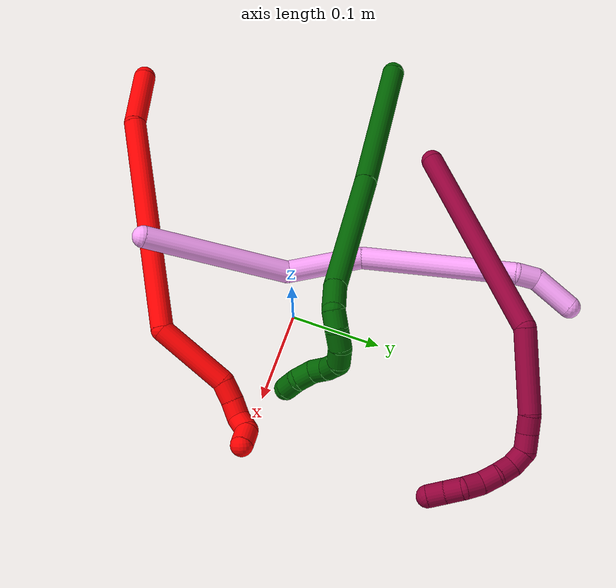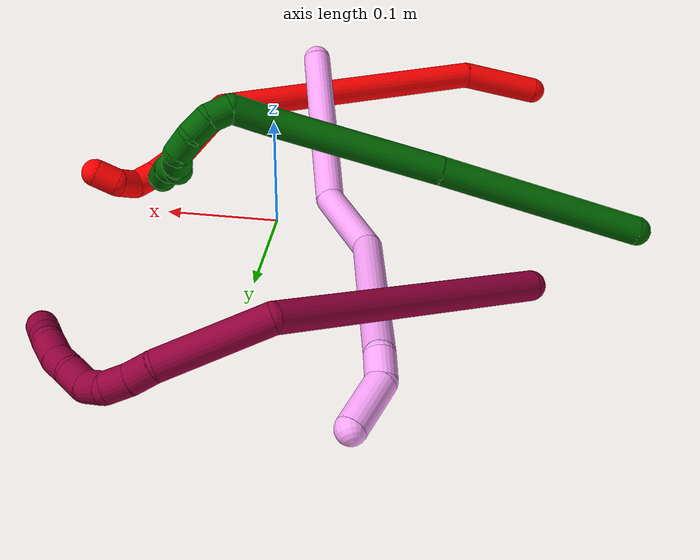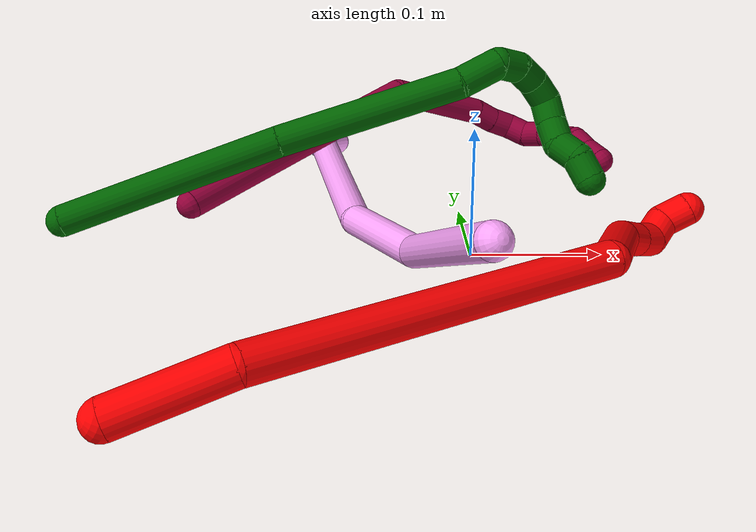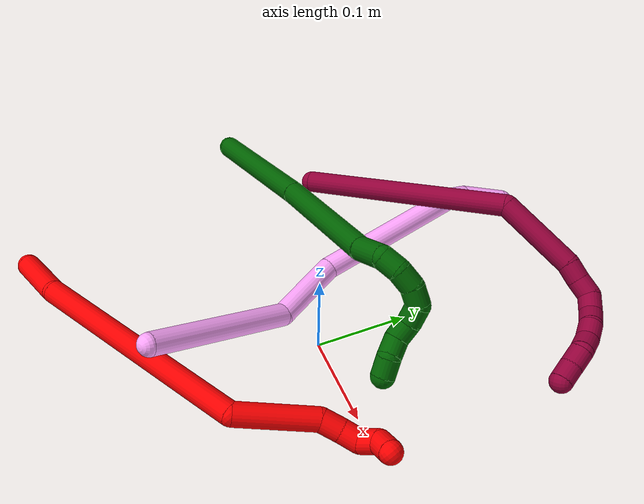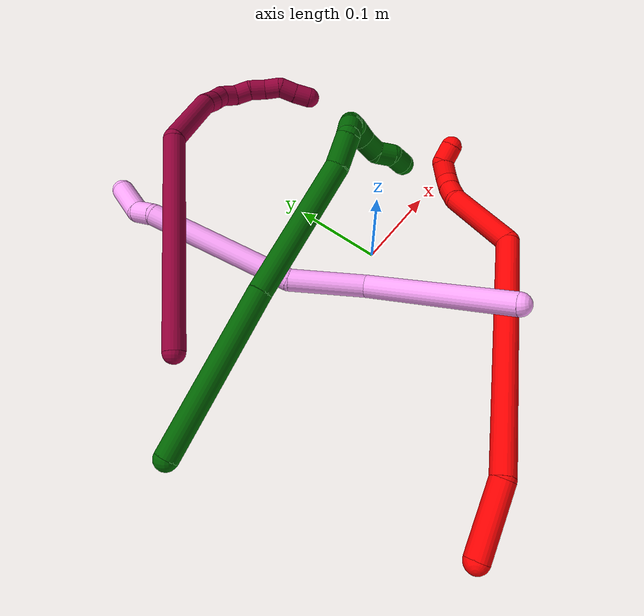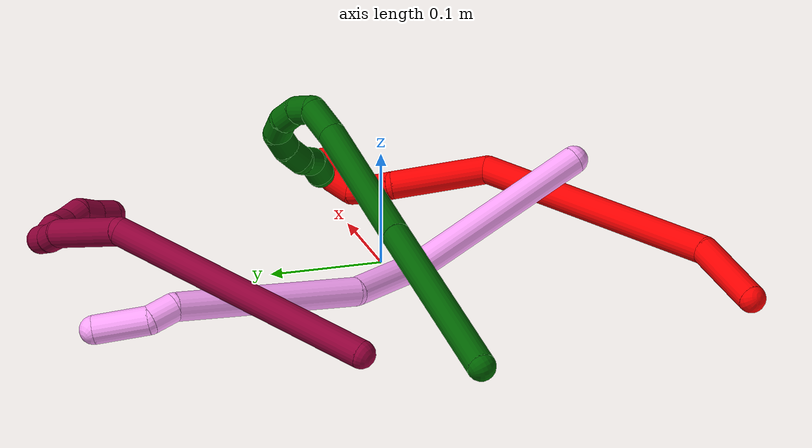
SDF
<sdf version="1.7">
 <world name="default">
  <model name="photoneo_s_sensor">
   <static>1</static>
   <pose>0 0 2 1.57079 1.57079 3.14159</pose>
   <link name="link">
    <inertial><mass>0.1</mass></inertial>
    <sensor name="sensor" type="depth">
     <update_rate>30</update_rate>
     <camera>
      <horizontal_fov>1.22</horizontal_fov>
      <image><width>1920</width><height>1200</height><format>B8G8R8</format></image>
      <clip><near>0.1</near><far>4</far></clip>
      <depth_camera><output>points</output></depth_camera>
     </camera>
     <plugin name="camera_plugin" filename="libgazebo_ros_depth_camera.so">
      <baseline>0.2</baseline>
      <alwaysOn>1</alwaysOn>
      <updateRate>0.0</updateRate>
      <cameraName>camera_ir</cameraName>
      <imageTopicName>/camera/color/image_raw</imageTopicName>
      <cameraInfoTopicName>/camera/color/camera_info</cameraInfoTopicName>
      <depthImageTopicName>/camera/depth/image_raw</depthImageTopicName>
      <depthImageCameraInfoTopicName>/camera/depth/camera_info</depthImageCameraInfoTopicName>
      <pointCloudTopicName>/camera/depth/points</pointCloudTopicName>
      <frameName>fr_optical</frameName>
      <pointCloudCutoff>0.1</pointCloudCutoff>
      <pointCloudCutoffMax>2.0</pointCloudCutoffMax>
      <distortionK1>0</distortionK1>
      <distortionK2>0</distortionK2>
      <distortionK3>0</distortionK3>
      <distortionT1>0</distortionT1>
      <distortionT2>0</distortionT2>
      <CxPrime>0</CxPrime>
      <Cx>0</Cx>
      <Cy>0</Cy>
      <focalLength>0</focalLength>
      <hackBaseline>0</hackBaseline>
     </plugin>
    </sensor>
   </link>
  </model>
  <model name="2">
   <static>0</static>
   <link name="2">
    <collision name="collision-cylinder-e_1_1_4">
     <pose>0.024475 0.000554 -0.027061 -3.12114 0.735164 -3.08849</pose>
     <geometry><cylinder><radius>0.0125</radius><length>0.072983</length></cylinder></geometry>
     <surface>
      <friction><ode><mu>1.16</mu><mu2>1.16</mu2><slip1>0</slip1><slip2>0</slip2></ode></friction>
      <contact><ode><kp>1e+06</kp><kd>1</kd><max_vel>0</max_vel><min_depth>0.001</min_depth></ode></contact>
     </surface>
    </collision>
    <visual name="visual-cylinder-e_1_1_4">
     <pose>0.024475 0.000554 -0.027061 -3.12114 0.735164 -3.08849</pose>
     <geometry><cylinder><radius>0.0125</radius><length>0.072983</length></cylinder></geometry>
     <material><ambient>1 0 0 1</ambient></material>
    </visual>
    <collision name="collision-cylinder-e_2_4_5">
     <pose>0.102149 0.028299 -0.166988 -2.90518 0.429673 -2.14474</pose>
     <geometry><cylinder><radius>0.0125</radius><length>0.255407</length></cylinder></geometry>
     <surface>
      <friction><ode><mu>1.16</mu><mu2>1.16</mu2><slip1>0</slip1><slip2>0</slip2></ode></friction>
      <contact><ode><kp>1e+06</kp><kd>1</kd><max_vel>0</max_vel><min_depth>0.001</min_depth></ode></contact>
     </surface>
    </collision>
    <visual name="visual-cylinder-e_2_4_5">
     <pose>0.102149 0.028299 -0.166988 -2.90518 0.429673 -2.14474</pose>
     <geometry><cylinder><radius>0.0125</radius><length>0.255407</length></cylinder></geometry>
     <material><ambient>1 0 0 1</ambient></material>
    </visual>
    <collision name="collision-cylinder-e_3_5_6">
     <pose>0.153456 0.08789 -0.308211 -2.28974 -0.043876 0.096646</pose>
     <geometry><cylinder><radius>0.0125</radius><length>0.086197</length></cylinder></geometry>
     <surface>
      <friction><ode><mu>1.16</mu><mu2>1.16</mu2><slip1>0</slip1><slip2>0</slip2></ode></friction>
      <contact><ode><kp>1e+06</kp><kd>1</kd><max_vel>0</max_vel><min_depth>0.001</min_depth></ode></contact>
     </surface>
    </collision>
    <visual name="visual-cylinder-e_3_5_6">
     <pose>0.153456 0.08789 -0.308211 -2.28974 -0.043876 0.096646</pose>
     <geometry><cylinder><radius>0.0125</radius><length>0.086197</length></cylinder></geometry>
     <material><ambient>1 0 0 1</ambient></material>
    </visual>
    <collision name="collision-cylinder-e_4_6_7">
     <pose>0.151392 0.12496 -0.346953 -2.71909 -0.015285 0.071247</pose>
     <geometry><cylinder><radius>0.0125</radius><length>0.022776</length></cylinder></geometry>
     <surface>
      <friction><ode><mu>1.16</mu><mu2>1.16</mu2><slip1>0</slip1><slip2>0</slip2></ode></friction>
      <contact><ode><kp>1e+06</kp><kd>1</kd><max_vel>0</max_vel><min_depth>0.001</min_depth></ode></contact>
     </surface>
    </collision>
    <visual name="visual-cylinder-e_4_6_7">
     <pose>0.151392 0.12496 -0.346953 -2.71909 -0.015285 0.071247</pose>
     <geometry><cylinder><radius>0.0125</radius><length>0.022776</length></cylinder></geometry>
     <material><ambient>1 0 0 1</ambient></material>
    </visual>
    <collision name="collision-cylinder-e_5_7_8">
     <pose>0.152266 0.133184 -0.366845 -2.78374 0.102985 -0.555204</pose>
     <geometry><cylinder><radius>0.0125</radius><length>0.020405</length></cylinder></geometry>
     <surface>
      <friction><ode><mu>1.16</mu><mu2>1.16</mu2><slip1>0</slip1><slip2>0</slip2></ode></friction>
      <contact><ode><kp>1e+06</kp><kd>1</kd><max_vel>0</max_vel><min_depth>0.001</min_depth></ode></contact>
     </surface>
    </collision>
    <visual name="visual-cylinder-e_5_7_8">
     <pose>0.152266 0.133184 -0.366845 -2.78374 0.102985 -0.555204</pose>
     <geometry><cylinder><radius>0.0125</radius><length>0.020405</length></cylinder></geometry>
     <material><ambient>1 0 0 1</ambient></material>
    </visual>
    <collision name="collision-cylinder-e_6_8_9">
     <pose>0.159946 0.142618 -0.381861 -2.32383 0.688511 -1.38251</pose>
     <geometry><cylinder><radius>0.0125</radius><length>0.020871</length></cylinder></geometry>
     <surface>
      <friction><ode><mu>1.16</mu><mu2>1.16</mu2><slip1>0</slip1><slip2>0</slip2></ode></friction>
      <contact><ode><kp>1e+06</kp><kd>1</kd><max_vel>0</max_vel><min_depth>0.001</min_depth></ode></contact>
     </surface>
    </collision>
    <visual name="visual-cylinder-e_6_8_9">
     <pose>0.159946 0.142618 -0.381861 -2.32383 0.688511 -1.38251</pose>
     <geometry><cylinder><radius>0.0125</radius><length>0.020871</length></cylinder></geometry>
     <material><ambient>1 0 0 1</ambient></material>
    </visual>
    <collision name="collision-cylinder-e_7_9_2">
     <pose>0.175145 0.147453 -0.39366 2.97709 0.931194 2.81634</pose>
     <geometry><cylinder><radius>0.0125</radius><length>0.021361</length></cylinder></geometry>
     <surface>
      <friction><ode><mu>1.16</mu><mu2>1.16</mu2><slip1>0</slip1><slip2>0</slip2></ode></friction>
      <contact><ode><kp>1e+06</kp><kd>1</kd><max_vel>0</max_vel><min_depth>0.001</min_depth></ode></contact>
     </surface>
    </collision>
    <visual name="visual-cylinder-e_7_9_2">
     <pose>0.175145 0.147453 -0.39366 2.97709 0.931194 2.81634</pose>
     <geometry><cylinder><radius>0.0125</radius><length>0.021361</length></cylinder></geometry>
     <material><ambient>1 0 0 1</ambient></material>
    </visual>
    <collision name="collision-sphere-2">
     <pose>0.183715 0.146409 -0.399949 0 -0 0</pose>
     <geometry><sphere><radius>0.0125</radius></sphere></geometry>
     <surface>
      <friction><ode><mu>1.16</mu><mu2>1.16</mu2><slip1>0</slip1><slip2>0</slip2></ode></friction>
      <contact><ode><kp>1e+06</kp><kd>1</kd><max_vel>0</max_vel><min_depth>0.001</min_depth></ode></contact>
     </surface>
    </collision>
    <visual name="visual-sphere-2">
     <pose>0.183715 0.146409 -0.399949 0 -0 0</pose>
     <geometry><sphere><radius>0.0125</radius></sphere></geometry>
     <material><ambient>1 0 0 1</ambient></material>
    </visual>
    <collision name="collision-sphere-9">
     <pose>0.166576 0.148497 -0.387371 0 -0 0</pose>
     <geometry><sphere><radius>0.0125</radius></sphere></geometry>
     <surface>
      <friction><ode><mu>1.16</mu><mu2>1.16</mu2><slip1>0</slip1><slip2>0</slip2></ode></friction>
      <contact><ode><kp>1e+06</kp><kd>1</kd><max_vel>0</max_vel><min_depth>0.001</min_depth></ode></contact>
     </surface>
    </collision>
    <visual name="visual-sphere-9">
     <pose>0.166576 0.148497 -0.387371 0 -0 0</pose>
     <geometry><sphere><radius>0.0125</radius></sphere></geometry>
     <material><ambient>1 0 0 1</ambient></material>
    </visual>
    <collision name="collision-sphere-4">
     <pose>0.048951 0.001107 -0.054122 0 -0 0</pose>
     <geometry><sphere><radius>0.0125</radius></sphere></geometry>
     <surface>
      <friction><ode><mu>1.16</mu><mu2>1.16</mu2><slip1>0</slip1><slip2>0</slip2></ode></friction>
      <contact><ode><kp>1e+06</kp><kd>1</kd><max_vel>0</max_vel><min_depth>0.001</min_depth></ode></contact>
     </surface>
    </collision>
    <visual name="visual-sphere-4">
     <pose>0.048951 0.001107 -0.054122 0 -0 0</pose>
     <geometry><sphere><radius>0.0125</radius></sphere></geometry>
     <material><ambient>1 0 0 1</ambient></material>
    </visual>
    <collision name="collision-sphere-1">
     <geometry><sphere><radius>0.0125</radius></sphere></geometry>
     <surface>
      <friction><ode><mu>1.16</mu><mu2>1.16</mu2><slip1>0</slip1><slip2>0</slip2></ode></friction>
      <contact><ode><kp>1e+06</kp><kd>1</kd><max_vel>0</max_vel><min_depth>0.001</min_depth></ode></contact>
     </surface>
    </collision>
    <visual name="visual-sphere-1">
     <geometry><sphere><radius>0.0125</radius></sphere></geometry>
     <material><ambient>1 0 0 1</ambient></material>
    </visual>
    <collision name="collision-sphere-8">
     <pose>0.153315 0.136738 -0.37635 0 -0 0</pose>
     <geometry><sphere><radius>0.0125</radius></sphere></geometry>
     <surface>
      <friction><ode><mu>1.16</mu><mu2>1.16</mu2><slip1>0</slip1><slip2>0</slip2></ode></friction>
      <contact><ode><kp>1e+06</kp><kd>1</kd><max_vel>0</max_vel><min_depth>0.001</min_depth></ode></contact>
     </surface>
    </collision>
    <visual name="visual-sphere-8">
     <pose>0.153315 0.136738 -0.37635 0 -0 0</pose>
     <geometry><sphere><radius>0.0125</radius></sphere></geometry>
     <material><ambient>1 0 0 1</ambient></material>
    </visual>
    <collision name="collision-sphere-5">
     <pose>0.155346 0.05549 -0.279854 0 -0 0</pose>
     <geometry><sphere><radius>0.0125</radius></sphere></geometry>
     <surface>
      <friction><ode><mu>1.16</mu><mu2>1.16</mu2><slip1>0</slip1><slip2>0</slip2></ode></friction>
      <contact><ode><kp>1e+06</kp><kd>1</kd><max_vel>0</max_vel><min_depth>0.001</min_depth></ode></contact>
     </surface>
    </collision>
    <visual name="visual-sphere-5">
     <pose>0.155346 0.05549 -0.279854 0 -0 0</pose>
     <geometry><sphere><radius>0.0125</radius></sphere></geometry>
     <material><ambient>1 0 0 1</ambient></material>
    </visual>
    <collision name="collision-sphere-6">
     <pose>0.151566 0.120291 -0.336568 0 -0 0</pose>
     <geometry><sphere><radius>0.0125</radius></sphere></geometry>
     <surface>
      <friction><ode><mu>1.16</mu><mu2>1.16</mu2><slip1>0</slip1><slip2>0</slip2></ode></friction>
      <contact><ode><kp>1e+06</kp><kd>1</kd><max_vel>0</max_vel><min_depth>0.001</min_depth></ode></contact>
     </surface>
    </collision>
    <visual name="visual-sphere-6">
     <pose>0.151566 0.120291 -0.336568 0 -0 0</pose>
     <geometry><sphere><radius>0.0125</radius></sphere></geometry>
     <material><ambient>1 0 0 1</ambient></material>
    </visual>
    <collision name="collision-sphere-7">
     <pose>0.151218 0.129629 -0.357339 0 -0 0</pose>
     <geometry><sphere><radius>0.0125</radius></sphere></geometry>
     <surface>
      <friction><ode><mu>1.16</mu><mu2>1.16</mu2><slip1>0</slip1><slip2>0</slip2></ode></friction>
      <contact><ode><kp>1e+06</kp><kd>1</kd><max_vel>0</max_vel><min_depth>0.001</min_depth></ode></contact>
     </surface>
    </collision>
    <visual name="visual-sphere-7">
     <pose>0.151218 0.129629 -0.357339 0 -0 0</pose>
     <geometry><sphere><radius>0.0125</radius></sphere></geometry>
     <material><ambient>1 0 0 1</ambient></material>
    </visual>
    <inertial>
     <pose>0.109475 0.053068 -0.205916 0 -0 0</pose>
     <mass>0.5</mass>
     <inertia>
      <ixx>-0.001708</ixx>
      <ixy>0</ixy>
      <ixz>0</ixz>
      <iyy>-0.000203</iyy>
      <iyz>0</iyz>
      <izz>-0.00098</izz>
     </inertia>
    </inertial>
   </link>
   <pose>-0.216011 -0.262583 0.016542 0.390888 -1.09659 -0.062134</pose>
  </model>
  <model name="4">
   <static>0</static>
   <link name="4">
    <collision name="collision-cylinder-e_1_1_4">
     <pose>-0.012169 -0.003093 0.083618 0.036973 -0.144413 -0.002675</pose>
     <geometry><cylinder><radius>0.0125</radius><length>0.169111</length></cylinder></geometry>
     <surface>
      <friction><ode><mu>1.16</mu><mu2>1.16</mu2><slip1>0</slip1><slip2>0</slip2></ode></friction>
      <contact><ode><kp>1e+06</kp><kd>1</kd><max_vel>0</max_vel><min_depth>0.001</min_depth></ode></contact>
     </surface>
    </collision>
    <visual name="visual-cylinder-e_1_1_4">
     <pose>-0.012169 -0.003093 0.083618 0.036973 -0.144413 -0.002675</pose>
     <geometry><cylinder><radius>0.0125</radius><length>0.169111</length></cylinder></geometry>
     <material><ambient>1 0.65098 0.996078 1</ambient></material>
    </visual>
    <collision name="collision-cylinder-e_2_4_5">
     <pose>-0.0265 0.012284 0.205393 -0.450808 -0.050969 0.01169</pose>
     <geometry><cylinder><radius>0.0125</radius><length>0.084893</length></cylinder></geometry>
     <surface>
      <friction><ode><mu>1.16</mu><mu2>1.16</mu2><slip1>0</slip1><slip2>0</slip2></ode></friction>
      <contact><ode><kp>1e+06</kp><kd>1</kd><max_vel>0</max_vel><min_depth>0.001</min_depth></ode></contact>
     </surface>
    </collision>
    <visual name="visual-cylinder-e_2_4_5">
     <pose>-0.0265 0.012284 0.205393 -0.450808 -0.050969 0.01169</pose>
     <geometry><cylinder><radius>0.0125</radius><length>0.084893</length></cylinder></geometry>
     <material><ambient>1 0.65098 0.996078 1</ambient></material>
    </visual>
    <collision name="collision-cylinder-e_3_5_6">
     <pose>-0.064228 0.062378 0.316178 -0.410676 -0.422006 0.089162</pose>
     <geometry><cylinder><radius>0.0125</radius><length>0.173666</length></cylinder></geometry>
     <surface>
      <friction><ode><mu>1.16</mu><mu2>1.16</mu2><slip1>0</slip1><slip2>0</slip2></ode></friction>
      <contact><ode><kp>1e+06</kp><kd>1</kd><max_vel>0</max_vel><min_depth>0.001</min_depth></ode></contact>
     </surface>
    </collision>
    <visual name="visual-cylinder-e_3_5_6">
     <pose>-0.064228 0.062378 0.316178 -0.410676 -0.422006 0.089162</pose>
     <geometry><cylinder><radius>0.0125</radius><length>0.173666</length></cylinder></geometry>
     <material><ambient>1 0.65098 0.996078 1</ambient></material>
    </visual>
    <collision name="collision-cylinder-e_4_6_7">
     <pose>-0.102515 0.094189 0.400639 -0.015688 -0.225994 0.00178</pose>
     <geometry><cylinder><radius>0.0125</radius><length>0.024286</length></cylinder></geometry>
     <surface>
      <friction><ode><mu>1.16</mu><mu2>1.16</mu2><slip1>0</slip1><slip2>0</slip2></ode></friction>
      <contact><ode><kp>1e+06</kp><kd>1</kd><max_vel>0</max_vel><min_depth>0.001</min_depth></ode></contact>
     </surface>
    </collision>
    <visual name="visual-cylinder-e_4_6_7">
     <pose>-0.102515 0.094189 0.400639 -0.015688 -0.225994 0.00178</pose>
     <geometry><cylinder><radius>0.0125</radius><length>0.024286</length></cylinder></geometry>
     <material><ambient>1 0.65098 0.996078 1</ambient></material>
    </visual>
    <collision name="collision-cylinder-e_5_7_2">
     <pose>-0.120883 0.090076 0.430184 0.238099 -0.709397 -0.088544</pose>
     <geometry><cylinder><radius>0.0125</radius><length>0.048043</length></cylinder></geometry>
     <surface>
      <friction><ode><mu>1.16</mu><mu2>1.16</mu2><slip1>0</slip1><slip2>0</slip2></ode></friction>
      <contact><ode><kp>1e+06</kp><kd>1</kd><max_vel>0</max_vel><min_depth>0.001</min_depth></ode></contact>
     </surface>
    </collision>
    <visual name="visual-cylinder-e_5_7_2">
     <pose>-0.120883 0.090076 0.430184 0.238099 -0.709397 -0.088544</pose>
     <geometry><cylinder><radius>0.0125</radius><length>0.048043</length></cylinder></geometry>
     <material><ambient>1 0.65098 0.996078 1</ambient></material>
    </visual>
    <collision name="collision-sphere-2">
     <pose>-0.13653 0.085777 0.447897 0 -0 0</pose>
     <geometry><sphere><radius>0.0125</radius></sphere></geometry>
     <surface>
      <friction><ode><mu>1.16</mu><mu2>1.16</mu2><slip1>0</slip1><slip2>0</slip2></ode></friction>
      <contact><ode><kp>1e+06</kp><kd>1</kd><max_vel>0</max_vel><min_depth>0.001</min_depth></ode></contact>
     </surface>
    </collision>
    <visual name="visual-sphere-2">
     <pose>-0.13653 0.085777 0.447897 0 -0 0</pose>
     <geometry><sphere><radius>0.0125</radius></sphere></geometry>
     <material><ambient>1 0.65098 0.996078 1</ambient></material>
    </visual>
    <collision name="collision-sphere-7">
     <pose>-0.105236 0.094375 0.412472 0 -0 0</pose>
     <geometry><sphere><radius>0.0125</radius></sphere></geometry>
     <surface>
      <friction><ode><mu>1.16</mu><mu2>1.16</mu2><slip1>0</slip1><slip2>0</slip2></ode></friction>
      <contact><ode><kp>1e+06</kp><kd>1</kd><max_vel>0</max_vel><min_depth>0.001</min_depth></ode></contact>
     </surface>
    </collision>
    <visual name="visual-sphere-7">
     <pose>-0.105236 0.094375 0.412472 0 -0 0</pose>
     <geometry><sphere><radius>0.0125</radius></sphere></geometry>
     <material><ambient>1 0.65098 0.996078 1</ambient></material>
    </visual>
    <collision name="collision-sphere-6">
     <pose>-0.099794 0.094003 0.388806 0 -0 0</pose>
     <geometry><sphere><radius>0.0125</radius></sphere></geometry>
     <surface>
      <friction><ode><mu>1.16</mu><mu2>1.16</mu2><slip1>0</slip1><slip2>0</slip2></ode></friction>
      <contact><ode><kp>1e+06</kp><kd>1</kd><max_vel>0</max_vel><min_depth>0.001</min_depth></ode></contact>
     </surface>
    </collision>
    <visual name="visual-sphere-6">
     <pose>-0.099794 0.094003 0.388806 0 -0 0</pose>
     <geometry><sphere><radius>0.0125</radius></sphere></geometry>
     <material><ambient>1 0.65098 0.996078 1</ambient></material>
    </visual>
    <collision name="collision-sphere-5">
     <pose>-0.028662 0.030753 0.243549 0 -0 0</pose>
     <geometry><sphere><radius>0.0125</radius></sphere></geometry>
     <surface>
      <friction><ode><mu>1.16</mu><mu2>1.16</mu2><slip1>0</slip1><slip2>0</slip2></ode></friction>
      <contact><ode><kp>1e+06</kp><kd>1</kd><max_vel>0</max_vel><min_depth>0.001</min_depth></ode></contact>
     </surface>
    </collision>
    <visual name="visual-sphere-5">
     <pose>-0.028662 0.030753 0.243549 0 -0 0</pose>
     <geometry><sphere><radius>0.0125</radius></sphere></geometry>
     <material><ambient>1 0.65098 0.996078 1</ambient></material>
    </visual>
    <collision name="collision-sphere-1">
     <geometry><sphere><radius>0.0125</radius></sphere></geometry>
     <surface>
      <friction><ode><mu>1.16</mu><mu2>1.16</mu2><slip1>0</slip1><slip2>0</slip2></ode></friction>
      <contact><ode><kp>1e+06</kp><kd>1</kd><max_vel>0</max_vel><min_depth>0.001</min_depth></ode></contact>
     </surface>
    </collision>
    <visual name="visual-sphere-1">
     <geometry><sphere><radius>0.0125</radius></sphere></geometry>
     <material><ambient>1 0.65098 0.996078 1</ambient></material>
    </visual>
    <collision name="collision-sphere-4">
     <pose>-0.024337 -0.006186 0.167236 0 -0 0</pose>
     <geometry><sphere><radius>0.0125</radius></sphere></geometry>
     <surface>
      <friction><ode><mu>1.16</mu><mu2>1.16</mu2><slip1>0</slip1><slip2>0</slip2></ode></friction>
      <contact><ode><kp>1e+06</kp><kd>1</kd><max_vel>0</max_vel><min_depth>0.001</min_depth></ode></contact>
     </surface>
    </collision>
    <visual name="visual-sphere-4">
     <pose>-0.024337 -0.006186 0.167236 0 -0 0</pose>
     <geometry><sphere><radius>0.0125</radius></sphere></geometry>
     <material><ambient>1 0.65098 0.996078 1</ambient></material>
    </visual>
    <inertial>
     <pose>-0.047518 0.035936 0.233768 0 -0 0</pose>
     <mass>0.5</mass>
     <inertia>
      <ixx>0.000897</ixx>
      <ixy>0</ixy>
      <ixz>0</ixz>
      <iyy>0.000924</iyy>
      <iyz>0</iyz>
      <izz>0.000118</izz>
     </inertia>
    </inertial>
   </link>
   <pose>-0.007467 -0.174011 0.07876 2.05468 0.414107 -2.53441</pose>
  </model>
  <model name="6">
   <static>0</static>
   <link name="6">
    <collision name="collision-cylinder-e_1_1_4">
     <pose>0.081034 -0.032753 -0.014587 1.98978 1.15423 1.57345</pose>
     <geometry><cylinder><radius>0.0125</radius><length>0.177224</length></cylinder></geometry>
     <surface>
      <friction><ode><mu>1.16</mu><mu2>1.16</mu2><slip1>0</slip1><slip2>0</slip2></ode></friction>
      <contact><ode><kp>1e+06</kp><kd>1</kd><max_vel>0</max_vel><min_depth>0.001</min_depth></ode></contact>
     </surface>
    </collision>
    <visual name="visual-cylinder-e_1_1_4">
     <pose>0.081034 -0.032753 -0.014587 1.98978 1.15423 1.57345</pose>
     <geometry><cylinder><radius>0.0125</radius><length>0.177224</length></cylinder></geometry>
     <material><ambient>0 0.392157 0.003922 1</ambient></material>
    </visual>
    <collision name="collision-cylinder-e_2_4_5">
     <pose>0.230518 -0.089999 -0.042699 2.07531 1.18276 1.69966</pose>
     <geometry><cylinder><radius>0.0125</radius><length>0.147894</length></cylinder></geometry>
     <surface>
      <friction><ode><mu>1.16</mu><mu2>1.16</mu2><slip1>0</slip1><slip2>0</slip2></ode></friction>
      <contact><ode><kp>1e+06</kp><kd>1</kd><max_vel>0</max_vel><min_depth>0.001</min_depth></ode></contact>
     </surface>
    </collision>
    <visual name="visual-cylinder-e_2_4_5">
     <pose>0.230518 -0.089999 -0.042699 2.07531 1.18276 1.69966</pose>
     <geometry><cylinder><radius>0.0125</radius><length>0.147894</length></cylinder></geometry>
     <material><ambient>0 0.392157 0.003922 1</ambient></material>
    </visual>
    <collision name="collision-cylinder-e_3_5_6">
     <pose>0.313839 -0.122889 -0.057201 1.68674 1.05397 1.15777</pose>
     <geometry><cylinder><radius>0.0125</radius><length>0.034212</length></cylinder></geometry>
     <surface>
      <friction><ode><mu>1.16</mu><mu2>1.16</mu2><slip1>0</slip1><slip2>0</slip2></ode></friction>
      <contact><ode><kp>1e+06</kp><kd>1</kd><max_vel>0</max_vel><min_depth>0.001</min_depth></ode></contact>
     </surface>
    </collision>
    <visual name="visual-cylinder-e_3_5_6">
     <pose>0.313839 -0.122889 -0.057201 1.68674 1.05397 1.15777</pose>
     <geometry><cylinder><radius>0.0125</radius><length>0.034212</length></cylinder></geometry>
     <material><ambient>0 0.392157 0.003922 1</ambient></material>
    </visual>
    <collision name="collision-cylinder-e_4_6_7">
     <pose>0.338118 -0.130531 -0.054491 -0.201525 1.19018 -0.136673</pose>
     <geometry><cylinder><radius>0.0125</radius><length>0.020264</length></cylinder></geometry>
     <surface>
      <friction><ode><mu>1.16</mu><mu2>1.16</mu2><slip1>0</slip1><slip2>0</slip2></ode></friction>
      <contact><ode><kp>1e+06</kp><kd>1</kd><max_vel>0</max_vel><min_depth>0.001</min_depth></ode></contact>
     </surface>
    </collision>
    <visual name="visual-cylinder-e_4_6_7">
     <pose>0.338118 -0.130531 -0.054491 -0.201525 1.19018 -0.136673</pose>
     <geometry><cylinder><radius>0.0125</radius><length>0.020264</length></cylinder></geometry>
     <material><ambient>0 0.392157 0.003922 1</ambient></material>
    </visual>
    <collision name="collision-cylinder-e_5_7_8">
     <pose>0.355341 -0.125311 -0.046027 -0.751926 0.874078 -0.364722</pose>
     <geometry><cylinder><radius>0.0125</radius><length>0.020383</length></cylinder></geometry>
     <surface>
      <friction><ode><mu>1.16</mu><mu2>1.16</mu2><slip1>0</slip1><slip2>0</slip2></ode></friction>
      <contact><ode><kp>1e+06</kp><kd>1</kd><max_vel>0</max_vel><min_depth>0.001</min_depth></ode></contact>
     </surface>
    </collision>
    <visual name="visual-cylinder-e_5_7_8">
     <pose>0.355341 -0.125311 -0.046027 -0.751926 0.874078 -0.364722</pose>
     <geometry><cylinder><radius>0.0125</radius><length>0.020383</length></cylinder></geometry>
     <material><ambient>0 0.392157 0.003922 1</ambient></material>
    </visual>
    <collision name="collision-cylinder-e_6_8_9">
     <pose>0.369682 -0.113717 -0.038665 -1.22278 0.710633 -0.508948</pose>
     <geometry><cylinder><radius>0.0125</radius><length>0.020004</length></cylinder></geometry>
     <surface>
      <friction><ode><mu>1.16</mu><mu2>1.16</mu2><slip1>0</slip1><slip2>0</slip2></ode></friction>
      <contact><ode><kp>1e+06</kp><kd>1</kd><max_vel>0</max_vel><min_depth>0.001</min_depth></ode></contact>
     </surface>
    </collision>
    <visual name="visual-cylinder-e_6_8_9">
     <pose>0.369682 -0.113717 -0.038665 -1.22278 0.710633 -0.508948</pose>
     <geometry><cylinder><radius>0.0125</radius><length>0.020004</length></cylinder></geometry>
     <material><ambient>0 0.392157 0.003922 1</ambient></material>
    </visual>
    <collision name="collision-cylinder-e_7_9_10">
     <pose>0.378056 -0.09709 -0.038601 -1.83015 0.186063 -0.241391</pose>
     <geometry><cylinder><radius>0.0125</radius><length>0.020004</length></cylinder></geometry>
     <surface>
      <friction><ode><mu>1.16</mu><mu2>1.16</mu2><slip1>0</slip1><slip2>0</slip2></ode></friction>
      <contact><ode><kp>1e+06</kp><kd>1</kd><max_vel>0</max_vel><min_depth>0.001</min_depth></ode></contact>
     </surface>
    </collision>
    <visual name="visual-cylinder-e_7_9_10">
     <pose>0.378056 -0.09709 -0.038601 -1.83015 0.186063 -0.241391</pose>
     <geometry><cylinder><radius>0.0125</radius><length>0.020004</length></cylinder></geometry>
     <material><ambient>0 0.392157 0.003922 1</ambient></material>
    </visual>
    <collision name="collision-cylinder-e_8_10_11">
     <pose>0.381231 -0.078987 -0.046046 -2.09078 0.132833 -0.228455</pose>
     <geometry><cylinder><radius>0.0125</radius><length>0.02</length></cylinder></geometry>
     <surface>
      <friction><ode><mu>1.16</mu><mu2>1.16</mu2><slip1>0</slip1><slip2>0</slip2></ode></friction>
      <contact><ode><kp>1e+06</kp><kd>1</kd><max_vel>0</max_vel><min_depth>0.001</min_depth></ode></contact>
     </surface>
    </collision>
    <visual name="visual-cylinder-e_8_10_11">
     <pose>0.381231 -0.078987 -0.046046 -2.09078 0.132833 -0.228455</pose>
     <geometry><cylinder><radius>0.0125</radius><length>0.02</length></cylinder></geometry>
     <material><ambient>0 0.392157 0.003922 1</ambient></material>
    </visual>
    <collision name="collision-cylinder-e_9_11_12">
     <pose>0.387994 -0.065037 -0.057443 -2.45099 0.574822 -1.37573</pose>
     <geometry><cylinder><radius>0.0125</radius><length>0.020006</length></cylinder></geometry>
     <surface>
      <friction><ode><mu>1.16</mu><mu2>1.16</mu2><slip1>0</slip1><slip2>0</slip2></ode></friction>
      <contact><ode><kp>1e+06</kp><kd>1</kd><max_vel>0</max_vel><min_depth>0.001</min_depth></ode></contact>
     </surface>
    </collision>
    <visual name="visual-cylinder-e_9_11_12">
     <pose>0.387994 -0.065037 -0.057443 -2.45099 0.574822 -1.37573</pose>
     <geometry><cylinder><radius>0.0125</radius><length>0.020006</length></cylinder></geometry>
     <material><ambient>0 0.392157 0.003922 1</ambient></material>
    </visual>
    <collision name="collision-cylinder-e_10_12_2">
     <pose>0.397486 -0.051006 -0.066787 -1.89023 0.417167 -0.569949</pose>
     <geometry><cylinder><radius>0.0125</radius><length>0.020008</length></cylinder></geometry>
     <surface>
      <friction><ode><mu>1.16</mu><mu2>1.16</mu2><slip1>0</slip1><slip2>0</slip2></ode></friction>
      <contact><ode><kp>1e+06</kp><kd>1</kd><max_vel>0</max_vel><min_depth>0.001</min_depth></ode></contact>
     </surface>
    </collision>
    <visual name="visual-cylinder-e_10_12_2">
     <pose>0.397486 -0.051006 -0.066787 -1.89023 0.417167 -0.569949</pose>
     <geometry><cylinder><radius>0.0125</radius><length>0.020008</length></cylinder></geometry>
     <material><ambient>0 0.392157 0.003922 1</ambient></material>
    </visual>
    <collision name="collision-sphere-2">
     <pose>0.40154 -0.042322 -0.069659 0 -0 0</pose>
     <geometry><sphere><radius>0.0125</radius></sphere></geometry>
     <surface>
      <friction><ode><mu>1.16</mu><mu2>1.16</mu2><slip1>0</slip1><slip2>0</slip2></ode></friction>
      <contact><ode><kp>1e+06</kp><kd>1</kd><max_vel>0</max_vel><min_depth>0.001</min_depth></ode></contact>
     </surface>
    </collision>
    <visual name="visual-sphere-2">
     <pose>0.40154 -0.042322 -0.069659 0 -0 0</pose>
     <geometry><sphere><radius>0.0125</radius></sphere></geometry>
     <material><ambient>0 0.392157 0.003922 1</ambient></material>
    </visual>
    <collision name="collision-sphere-12">
     <pose>0.393433 -0.059689 -0.063915 0 -0 0</pose>
     <geometry><sphere><radius>0.0125</radius></sphere></geometry>
     <surface>
      <friction><ode><mu>1.16</mu><mu2>1.16</mu2><slip1>0</slip1><slip2>0</slip2></ode></friction>
      <contact><ode><kp>1e+06</kp><kd>1</kd><max_vel>0</max_vel><min_depth>0.001</min_depth></ode></contact>
     </surface>
    </collision>
    <visual name="visual-sphere-12">
     <pose>0.393433 -0.059689 -0.063915 0 -0 0</pose>
     <geometry><sphere><radius>0.0125</radius></sphere></geometry>
     <material><ambient>0 0.392157 0.003922 1</ambient></material>
    </visual>
    <collision name="collision-sphere-11">
     <pose>0.382556 -0.070385 -0.050971 0 -0 0</pose>
     <geometry><sphere><radius>0.0125</radius></sphere></geometry>
     <surface>
      <friction><ode><mu>1.16</mu><mu2>1.16</mu2><slip1>0</slip1><slip2>0</slip2></ode></friction>
      <contact><ode><kp>1e+06</kp><kd>1</kd><max_vel>0</max_vel><min_depth>0.001</min_depth></ode></contact>
     </surface>
    </collision>
    <visual name="visual-sphere-11">
     <pose>0.382556 -0.070385 -0.050971 0 -0 0</pose>
     <geometry><sphere><radius>0.0125</radius></sphere></geometry>
     <material><ambient>0 0.392157 0.003922 1</ambient></material>
    </visual>
    <collision name="collision-sphere-10">
     <pose>0.379907 -0.087589 -0.041121 0 -0 0</pose>
     <geometry><sphere><radius>0.0125</radius></sphere></geometry>
     <surface>
      <friction><ode><mu>1.16</mu><mu2>1.16</mu2><slip1>0</slip1><slip2>0</slip2></ode></friction>
      <contact><ode><kp>1e+06</kp><kd>1</kd><max_vel>0</max_vel><min_depth>0.001</min_depth></ode></contact>
     </surface>
    </collision>
    <visual name="visual-sphere-10">
     <pose>0.379907 -0.087589 -0.041121 0 -0 0</pose>
     <geometry><sphere><radius>0.0125</radius></sphere></geometry>
     <material><ambient>0 0.392157 0.003922 1</ambient></material>
    </visual>
    <collision name="collision-sphere-9">
     <pose>0.376206 -0.106591 -0.03608 0 -0 0</pose>
     <geometry><sphere><radius>0.0125</radius></sphere></geometry>
     <surface>
      <friction><ode><mu>1.16</mu><mu2>1.16</mu2><slip1>0</slip1><slip2>0</slip2></ode></friction>
      <contact><ode><kp>1e+06</kp><kd>1</kd><max_vel>0</max_vel><min_depth>0.001</min_depth></ode></contact>
     </surface>
    </collision>
    <visual name="visual-sphere-9">
     <pose>0.376206 -0.106591 -0.03608 0 -0 0</pose>
     <geometry><sphere><radius>0.0125</radius></sphere></geometry>
     <material><ambient>0 0.392157 0.003922 1</ambient></material>
    </visual>
    <collision name="collision-sphere-4">
     <pose>0.162069 -0.065506 -0.029174 0 -0 0</pose>
     <geometry><sphere><radius>0.0125</radius></sphere></geometry>
     <surface>
      <friction><ode><mu>1.16</mu><mu2>1.16</mu2><slip1>0</slip1><slip2>0</slip2></ode></friction>
      <contact><ode><kp>1e+06</kp><kd>1</kd><max_vel>0</max_vel><min_depth>0.001</min_depth></ode></contact>
     </surface>
    </collision>
    <visual name="visual-sphere-4">
     <pose>0.162069 -0.065506 -0.029174 0 -0 0</pose>
     <geometry><sphere><radius>0.0125</radius></sphere></geometry>
     <material><ambient>0 0.392157 0.003922 1</ambient></material>
    </visual>
    <collision name="collision-sphere-1">
     <geometry><sphere><radius>0.0125</radius></sphere></geometry>
     <surface>
      <friction><ode><mu>1.16</mu><mu2>1.16</mu2><slip1>0</slip1><slip2>0</slip2></ode></friction>
      <contact><ode><kp>1e+06</kp><kd>1</kd><max_vel>0</max_vel><min_depth>0.001</min_depth></ode></contact>
     </surface>
    </collision>
    <visual name="visual-sphere-1">
     <geometry><sphere><radius>0.0125</radius></sphere></geometry>
     <material><ambient>0 0.392157 0.003922 1</ambient></material>
    </visual>
    <collision name="collision-sphere-8">
     <pose>0.363157 -0.120844 -0.04125 0 -0 0</pose>
     <geometry><sphere><radius>0.0125</radius></sphere></geometry>
     <surface>
      <friction><ode><mu>1.16</mu><mu2>1.16</mu2><slip1>0</slip1><slip2>0</slip2></ode></friction>
      <contact><ode><kp>1e+06</kp><kd>1</kd><max_vel>0</max_vel><min_depth>0.001</min_depth></ode></contact>
     </surface>
    </collision>
    <visual name="visual-sphere-8">
     <pose>0.363157 -0.120844 -0.04125 0 -0 0</pose>
     <geometry><sphere><radius>0.0125</radius></sphere></geometry>
     <material><ambient>0 0.392157 0.003922 1</ambient></material>
    </visual>
    <collision name="collision-sphere-5">
     <pose>0.298968 -0.114493 -0.056223 0 -0 0</pose>
     <geometry><sphere><radius>0.0125</radius></sphere></geometry>
     <surface>
      <friction><ode><mu>1.16</mu><mu2>1.16</mu2><slip1>0</slip1><slip2>0</slip2></ode></friction>
      <contact><ode><kp>1e+06</kp><kd>1</kd><max_vel>0</max_vel><min_depth>0.001</min_depth></ode></contact>
     </surface>
    </collision>
    <visual name="visual-sphere-5">
     <pose>0.298968 -0.114493 -0.056223 0 -0 0</pose>
     <geometry><sphere><radius>0.0125</radius></sphere></geometry>
     <material><ambient>0 0.392157 0.003922 1</ambient></material>
    </visual>
    <collision name="collision-sphere-6">
     <pose>0.328711 -0.131285 -0.058179 0 -0 0</pose>
     <geometry><sphere><radius>0.0125</radius></sphere></geometry>
     <surface>
      <friction><ode><mu>1.16</mu><mu2>1.16</mu2><slip1>0</slip1><slip2>0</slip2></ode></friction>
      <contact><ode><kp>1e+06</kp><kd>1</kd><max_vel>0</max_vel><min_depth>0.001</min_depth></ode></contact>
     </surface>
    </collision>
    <visual name="visual-sphere-6">
     <pose>0.328711 -0.131285 -0.058179 0 -0 0</pose>
     <geometry><sphere><radius>0.0125</radius></sphere></geometry>
     <material><ambient>0 0.392157 0.003922 1</ambient></material>
    </visual>
    <collision name="collision-sphere-7">
     <pose>0.347524 -0.129778 -0.050804 0 -0 0</pose>
     <geometry><sphere><radius>0.0125</radius></sphere></geometry>
     <surface>
      <friction><ode><mu>1.16</mu><mu2>1.16</mu2><slip1>0</slip1><slip2>0</slip2></ode></friction>
      <contact><ode><kp>1e+06</kp><kd>1</kd><max_vel>0</max_vel><min_depth>0.001</min_depth></ode></contact>
     </surface>
    </collision>
    <visual name="visual-sphere-7">
     <pose>0.347524 -0.129778 -0.050804 0 -0 0</pose>
     <geometry><sphere><radius>0.0125</radius></sphere></geometry>
     <material><ambient>0 0.392157 0.003922 1</ambient></material>
    </visual>
    <inertial>
     <pose>0.223166 -0.073274 -0.035703 0 -0 0</pose>
     <mass>0.5</mass>
     <inertia>
      <ixx>0.000317</ixx>
      <ixy>0</ixy>
      <ixz>0</ixz>
      <iyy>0.000928</iyy>
      <iyz>0</iyz>
      <izz>-0.000439</izz>
     </inertia>
    </inertial>
   </link>
   <pose>-0.314185 0.01086 0.025392 -1.89568 0.088323 0.167661</pose>
  </model>
  <model name="8">
   <static>0</static>
   <link name="8">
    <collision name="collision-cylinder-e_1_1_4">
     <pose>0.003879 0.013212 0.123124 -0.1069 0.031318 -0.001676</pose>
     <geometry><cylinder><radius>0.0125</radius><length>0.247783</length></cylinder></geometry>
     <surface>
      <friction><ode><mu>1.16</mu><mu2>1.16</mu2><slip1>0</slip1><slip2>0</slip2></ode></friction>
      <contact><ode><kp>1e+06</kp><kd>1</kd><max_vel>0</max_vel><min_depth>0.001</min_depth></ode></contact>
     </surface>
    </collision>
    <visual name="visual-cylinder-e_1_1_4">
     <pose>0.003879 0.013212 0.123124 -0.1069 0.031318 -0.001676</pose>
     <geometry><cylinder><radius>0.0125</radius><length>0.247783</length></cylinder></geometry>
     <material><ambient>0.584314 0 0.227451 1</ambient></material>
    </visual>
    <collision name="collision-cylinder-e_2_4_5">
     <pose>0.035842 0.025037 0.282431 0.038321 0.659654 0.01312</pose>
     <geometry><cylinder><radius>0.0125</radius><length>0.091648</length></cylinder></geometry>
     <surface>
      <friction><ode><mu>1.16</mu><mu2>1.16</mu2><slip1>0</slip1><slip2>0</slip2></ode></friction>
      <contact><ode><kp>1e+06</kp><kd>1</kd><max_vel>0</max_vel><min_depth>0.001</min_depth></ode></contact>
     </surface>
    </collision>
    <visual name="visual-cylinder-e_2_4_5">
     <pose>0.035842 0.025037 0.282431 0.038321 0.659654 0.01312</pose>
     <geometry><cylinder><radius>0.0125</radius><length>0.091648</length></cylinder></geometry>
     <material><ambient>0.584314 0 0.227451 1</ambient></material>
    </visual>
    <collision name="collision-cylinder-e_3_5_6">
     <pose>0.072077 0.02278 0.324761 0.140684 0.920017 0.06979</pose>
     <geometry><cylinder><radius>0.0125</radius><length>0.020494</length></cylinder></geometry>
     <surface>
      <friction><ode><mu>1.16</mu><mu2>1.16</mu2><slip1>0</slip1><slip2>0</slip2></ode></friction>
      <contact><ode><kp>1e+06</kp><kd>1</kd><max_vel>0</max_vel><min_depth>0.001</min_depth></ode></contact>
     </surface>
    </collision>
    <visual name="visual-cylinder-e_3_5_6">
     <pose>0.072077 0.02278 0.324761 0.140684 0.920017 0.06979</pose>
     <geometry><cylinder><radius>0.0125</radius><length>0.020494</length></cylinder></geometry>
     <material><ambient>0.584314 0 0.227451 1</ambient></material>
    </visual>
    <collision name="collision-cylinder-e_4_6_7">
     <pose>0.087259 0.02026 0.337866 0.232765 0.77674 0.095595</pose>
     <geometry><cylinder><radius>0.0125</radius><length>0.020055</length></cylinder></geometry>
     <surface>
      <friction><ode><mu>1.16</mu><mu2>1.16</mu2><slip1>0</slip1><slip2>0</slip2></ode></friction>
      <contact><ode><kp>1e+06</kp><kd>1</kd><max_vel>0</max_vel><min_depth>0.001</min_depth></ode></contact>
     </surface>
    </collision>
    <visual name="visual-cylinder-e_4_6_7">
     <pose>0.087259 0.02026 0.337866 0.232765 0.77674 0.095595</pose>
     <geometry><cylinder><radius>0.0125</radius><length>0.020055</length></cylinder></geometry>
     <material><ambient>0.584314 0 0.227451 1</ambient></material>
    </visual>
    <collision name="collision-cylinder-e_5_7_8">
     <pose>0.101236 0.012235 0.348157 1.08916 0.768089 0.480081</pose>
     <geometry><cylinder><radius>0.0125</radius><length>0.020001</length></cylinder></geometry>
     <surface>
      <friction><ode><mu>1.16</mu><mu2>1.16</mu2><slip1>0</slip1><slip2>0</slip2></ode></friction>
      <contact><ode><kp>1e+06</kp><kd>1</kd><max_vel>0</max_vel><min_depth>0.001</min_depth></ode></contact>
     </surface>
    </collision>
    <visual name="visual-cylinder-e_5_7_8">
     <pose>0.101236 0.012235 0.348157 1.08916 0.768089 0.480081</pose>
     <geometry><cylinder><radius>0.0125</radius><length>0.020001</length></cylinder></geometry>
     <material><ambient>0.584314 0 0.227451 1</ambient></material>
    </visual>
    <collision name="collision-cylinder-e_6_8_9">
     <pose>0.110385 -0.003307 0.354847 1.21966 0.221766 0.155266</pose>
     <geometry><cylinder><radius>0.0125</radius><length>0.020016</length></cylinder></geometry>
     <surface>
      <friction><ode><mu>1.16</mu><mu2>1.16</mu2><slip1>0</slip1><slip2>0</slip2></ode></friction>
      <contact><ode><kp>1e+06</kp><kd>1</kd><max_vel>0</max_vel><min_depth>0.001</min_depth></ode></contact>
     </surface>
    </collision>
    <visual name="visual-cylinder-e_6_8_9">
     <pose>0.110385 -0.003307 0.354847 1.21966 0.221766 0.155266</pose>
     <geometry><cylinder><radius>0.0125</radius><length>0.020016</length></cylinder></geometry>
     <material><ambient>0.584314 0 0.227451 1</ambient></material>
    </visual>
    <collision name="collision-cylinder-e_7_9_10">
     <pose>0.11699 -0.021337 0.359643 1.41 0.455966 0.389819</pose>
     <geometry><cylinder><radius>0.0125</radius><length>0.020002</length></cylinder></geometry>
     <surface>
      <friction><ode><mu>1.16</mu><mu2>1.16</mu2><slip1>0</slip1><slip2>0</slip2></ode></friction>
      <contact><ode><kp>1e+06</kp><kd>1</kd><max_vel>0</max_vel><min_depth>0.001</min_depth></ode></contact>
     </surface>
    </collision>
    <visual name="visual-cylinder-e_7_9_10">
     <pose>0.11699 -0.021337 0.359643 1.41 0.455966 0.389819</pose>
     <geometry><cylinder><radius>0.0125</radius><length>0.020002</length></cylinder></geometry>
     <material><ambient>0.584314 0 0.227451 1</ambient></material>
    </visual>
    <collision name="collision-cylinder-e_8_10_11">
     <pose>0.123107 -0.04002 0.361884 1.48919 0.172173 0.158725</pose>
     <geometry><cylinder><radius>0.0125</radius><length>0.02</length></cylinder></geometry>
     <surface>
      <friction><ode><mu>1.16</mu><mu2>1.16</mu2><slip1>0</slip1><slip2>0</slip2></ode></friction>
      <contact><ode><kp>1e+06</kp><kd>1</kd><max_vel>0</max_vel><min_depth>0.001</min_depth></ode></contact>
     </surface>
    </collision>
    <visual name="visual-cylinder-e_8_10_11">
     <pose>0.123107 -0.04002 0.361884 1.48919 0.172173 0.158725</pose>
     <geometry><cylinder><radius>0.0125</radius><length>0.02</length></cylinder></geometry>
     <material><ambient>0.584314 0 0.227451 1</ambient></material>
    </visual>
    <collision name="collision-cylinder-e_9_11_12">
     <pose>0.130558 -0.057676 0.360304 1.86596 0.611054 0.804679</pose>
     <geometry><cylinder><radius>0.0125</radius><length>0.02</length></cylinder></geometry>
     <surface>
      <friction><ode><mu>1.16</mu><mu2>1.16</mu2><slip1>0</slip1><slip2>0</slip2></ode></friction>
      <contact><ode><kp>1e+06</kp><kd>1</kd><max_vel>0</max_vel><min_depth>0.001</min_depth></ode></contact>
     </surface>
    </collision>
    <visual name="visual-cylinder-e_9_11_12">
     <pose>0.130558 -0.057676 0.360304 1.86596 0.611054 0.804679</pose>
     <geometry><cylinder><radius>0.0125</radius><length>0.02</length></cylinder></geometry>
     <material><ambient>0.584314 0 0.227451 1</ambient></material>
    </visual>
    <collision name="collision-cylinder-e_10_12_2">
     <pose>0.141247 -0.073995 0.356046 1.78841 0.518087 0.63748</pose>
     <geometry><cylinder><radius>0.0125</radius><length>0.020001</length></cylinder></geometry>
     <surface>
      <friction><ode><mu>1.16</mu><mu2>1.16</mu2><slip1>0</slip1><slip2>0</slip2></ode></friction>
      <contact><ode><kp>1e+06</kp><kd>1</kd><max_vel>0</max_vel><min_depth>0.001</min_depth></ode></contact>
     </surface>
    </collision>
    <visual name="visual-cylinder-e_10_12_2">
     <pose>0.141247 -0.073995 0.356046 1.78841 0.518087 0.63748</pose>
     <geometry><cylinder><radius>0.0125</radius><length>0.020001</length></cylinder></geometry>
     <material><ambient>0.584314 0 0.227451 1</ambient></material>
    </visual>
    <collision name="collision-sphere-2">
     <pose>0.1462 -0.082479 0.35417 0 -0 0</pose>
     <geometry><sphere><radius>0.0125</radius></sphere></geometry>
     <surface>
      <friction><ode><mu>1.16</mu><mu2>1.16</mu2><slip1>0</slip1><slip2>0</slip2></ode></friction>
      <contact><ode><kp>1e+06</kp><kd>1</kd><max_vel>0</max_vel><min_depth>0.001</min_depth></ode></contact>
     </surface>
    </collision>
    <visual name="visual-sphere-2">
     <pose>0.1462 -0.082479 0.35417 0 -0 0</pose>
     <geometry><sphere><radius>0.0125</radius></sphere></geometry>
     <material><ambient>0.584314 0 0.227451 1</ambient></material>
    </visual>
    <collision name="collision-sphere-12">
     <pose>0.136295 -0.065512 0.357922 0 -0 0</pose>
     <geometry><sphere><radius>0.0125</radius></sphere></geometry>
     <surface>
      <friction><ode><mu>1.16</mu><mu2>1.16</mu2><slip1>0</slip1><slip2>0</slip2></ode></friction>
      <contact><ode><kp>1e+06</kp><kd>1</kd><max_vel>0</max_vel><min_depth>0.001</min_depth></ode></contact>
     </surface>
    </collision>
    <visual name="visual-sphere-12">
     <pose>0.136295 -0.065512 0.357922 0 -0 0</pose>
     <geometry><sphere><radius>0.0125</radius></sphere></geometry>
     <material><ambient>0.584314 0 0.227451 1</ambient></material>
    </visual>
    <collision name="collision-sphere-11">
     <pose>0.12482 -0.04984 0.362687 0 -0 0</pose>
     <geometry><sphere><radius>0.0125</radius></sphere></geometry>
     <surface>
      <friction><ode><mu>1.16</mu><mu2>1.16</mu2><slip1>0</slip1><slip2>0</slip2></ode></friction>
      <contact><ode><kp>1e+06</kp><kd>1</kd><max_vel>0</max_vel><min_depth>0.001</min_depth></ode></contact>
     </surface>
    </collision>
    <visual name="visual-sphere-11">
     <pose>0.12482 -0.04984 0.362687 0 -0 0</pose>
     <geometry><sphere><radius>0.0125</radius></sphere></geometry>
     <material><ambient>0.584314 0 0.227451 1</ambient></material>
    </visual>
    <collision name="collision-sphere-10">
     <pose>0.121394 -0.030201 0.36108 0 -0 0</pose>
     <geometry><sphere><radius>0.0125</radius></sphere></geometry>
     <surface>
      <friction><ode><mu>1.16</mu><mu2>1.16</mu2><slip1>0</slip1><slip2>0</slip2></ode></friction>
      <contact><ode><kp>1e+06</kp><kd>1</kd><max_vel>0</max_vel><min_depth>0.001</min_depth></ode></contact>
     </surface>
    </collision>
    <visual name="visual-sphere-10">
     <pose>0.121394 -0.030201 0.36108 0 -0 0</pose>
     <geometry><sphere><radius>0.0125</radius></sphere></geometry>
     <material><ambient>0.584314 0 0.227451 1</ambient></material>
    </visual>
    <collision name="collision-sphere-9">
     <pose>0.112586 -0.012474 0.358205 0 -0 0</pose>
     <geometry><sphere><radius>0.0125</radius></sphere></geometry>
     <surface>
      <friction><ode><mu>1.16</mu><mu2>1.16</mu2><slip1>0</slip1><slip2>0</slip2></ode></friction>
      <contact><ode><kp>1e+06</kp><kd>1</kd><max_vel>0</max_vel><min_depth>0.001</min_depth></ode></contact>
     </surface>
    </collision>
    <visual name="visual-sphere-9">
     <pose>0.112586 -0.012474 0.358205 0 -0 0</pose>
     <geometry><sphere><radius>0.0125</radius></sphere></geometry>
     <material><ambient>0.584314 0 0.227451 1</ambient></material>
    </visual>
    <collision name="collision-sphere-4">
     <pose>0.007759 0.026425 0.246247 0 -0 0</pose>
     <geometry><sphere><radius>0.0125</radius></sphere></geometry>
     <surface>
      <friction><ode><mu>1.16</mu><mu2>1.16</mu2><slip1>0</slip1><slip2>0</slip2></ode></friction>
      <contact><ode><kp>1e+06</kp><kd>1</kd><max_vel>0</max_vel><min_depth>0.001</min_depth></ode></contact>
     </surface>
    </collision>
    <visual name="visual-sphere-4">
     <pose>0.007759 0.026425 0.246247 0 -0 0</pose>
     <geometry><sphere><radius>0.0125</radius></sphere></geometry>
     <material><ambient>0.584314 0 0.227451 1</ambient></material>
    </visual>
    <collision name="collision-sphere-1">
     <geometry><sphere><radius>0.0125</radius></sphere></geometry>
     <surface>
      <friction><ode><mu>1.16</mu><mu2>1.16</mu2><slip1>0</slip1><slip2>0</slip2></ode></friction>
      <contact><ode><kp>1e+06</kp><kd>1</kd><max_vel>0</max_vel><min_depth>0.001</min_depth></ode></contact>
     </surface>
    </collision>
    <visual name="visual-sphere-1">
     <geometry><sphere><radius>0.0125</radius></sphere></geometry>
     <material><ambient>0.584314 0 0.227451 1</ambient></material>
    </visual>
    <collision name="collision-sphere-8">
     <pose>0.108184 0.005861 0.351489 0 -0 0</pose>
     <geometry><sphere><radius>0.0125</radius></sphere></geometry>
     <surface>
      <friction><ode><mu>1.16</mu><mu2>1.16</mu2><slip1>0</slip1><slip2>0</slip2></ode></friction>
      <contact><ode><kp>1e+06</kp><kd>1</kd><max_vel>0</max_vel><min_depth>0.001</min_depth></ode></contact>
     </surface>
    </collision>
    <visual name="visual-sphere-8">
     <pose>0.108184 0.005861 0.351489 0 -0 0</pose>
     <geometry><sphere><radius>0.0125</radius></sphere></geometry>
     <material><ambient>0.584314 0 0.227451 1</ambient></material>
    </visual>
    <collision name="collision-sphere-5">
     <pose>0.063925 0.02365 0.318615 0 -0 0</pose>
     <geometry><sphere><radius>0.0125</radius></sphere></geometry>
     <surface>
      <friction><ode><mu>1.16</mu><mu2>1.16</mu2><slip1>0</slip1><slip2>0</slip2></ode></friction>
      <contact><ode><kp>1e+06</kp><kd>1</kd><max_vel>0</max_vel><min_depth>0.001</min_depth></ode></contact>
     </surface>
    </collision>
    <visual name="visual-sphere-5">
     <pose>0.063925 0.02365 0.318615 0 -0 0</pose>
     <geometry><sphere><radius>0.0125</radius></sphere></geometry>
     <material><ambient>0.584314 0 0.227451 1</ambient></material>
    </visual>
    <collision name="collision-sphere-6">
     <pose>0.08023 0.021909 0.330908 0 -0 0</pose>
     <geometry><sphere><radius>0.0125</radius></sphere></geometry>
     <surface>
      <friction><ode><mu>1.16</mu><mu2>1.16</mu2><slip1>0</slip1><slip2>0</slip2></ode></friction>
      <contact><ode><kp>1e+06</kp><kd>1</kd><max_vel>0</max_vel><min_depth>0.001</min_depth></ode></contact>
     </surface>
    </collision>
    <visual name="visual-sphere-6">
     <pose>0.08023 0.021909 0.330908 0 -0 0</pose>
     <geometry><sphere><radius>0.0125</radius></sphere></geometry>
     <material><ambient>0.584314 0 0.227451 1</ambient></material>
    </visual>
    <collision name="collision-sphere-7">
     <pose>0.094287 0.01861 0.344825 0 -0 0</pose>
     <geometry><sphere><radius>0.0125</radius></sphere></geometry>
     <surface>
      <friction><ode><mu>1.16</mu><mu2>1.16</mu2><slip1>0</slip1><slip2>0</slip2></ode></friction>
      <contact><ode><kp>1e+06</kp><kd>1</kd><max_vel>0</max_vel><min_depth>0.001</min_depth></ode></contact>
     </surface>
    </collision>
    <visual name="visual-sphere-7">
     <pose>0.094287 0.01861 0.344825 0 -0 0</pose>
     <geometry><sphere><radius>0.0125</radius></sphere></geometry>
     <material><ambient>0.584314 0 0.227451 1</ambient></material>
    </visual>
    <inertial>
     <pose>0.043892 0.005519 0.225297 0 -0 0</pose>
     <mass>0.5</mass>
     <inertia>
      <ixx>0.001352</ixx>
      <ixy>0</ixy>
      <ixz>0</ixz>
      <iyy>0.001339</iyy>
      <iyz>0</iyz>
      <izz>-0.000186</izz>
     </inertia>
    </inertial>
   </link>
   <pose>-0.228444 0.08776 0.012368 -0.772295 1.12335 -0.198323</pose>
  </model>
 </world>
</sdf>
